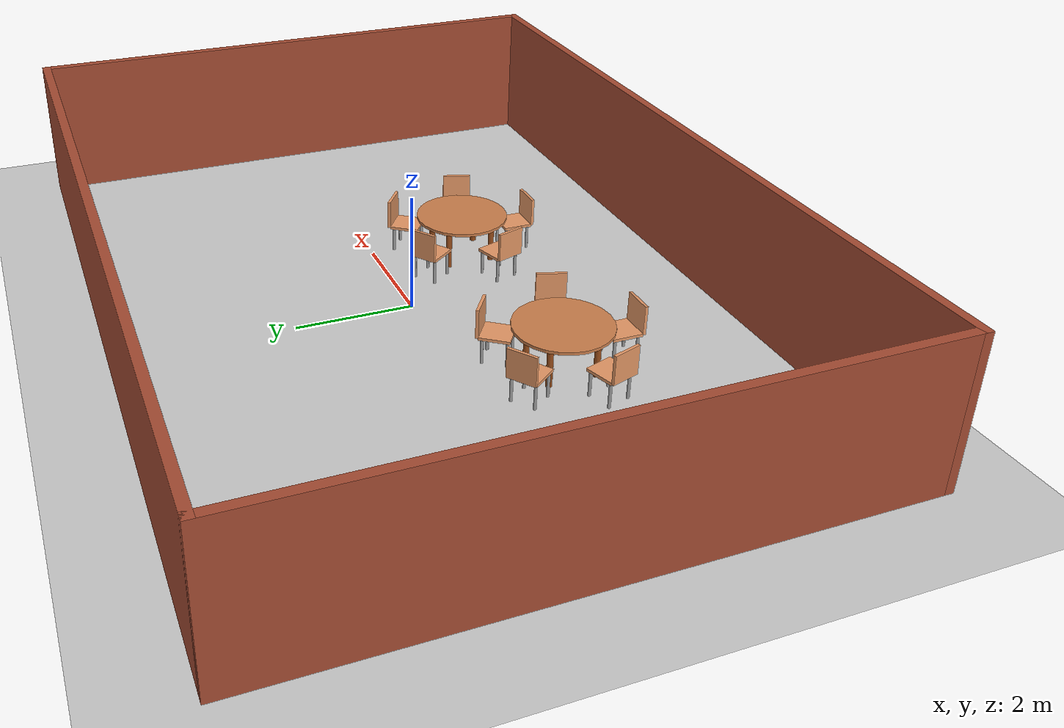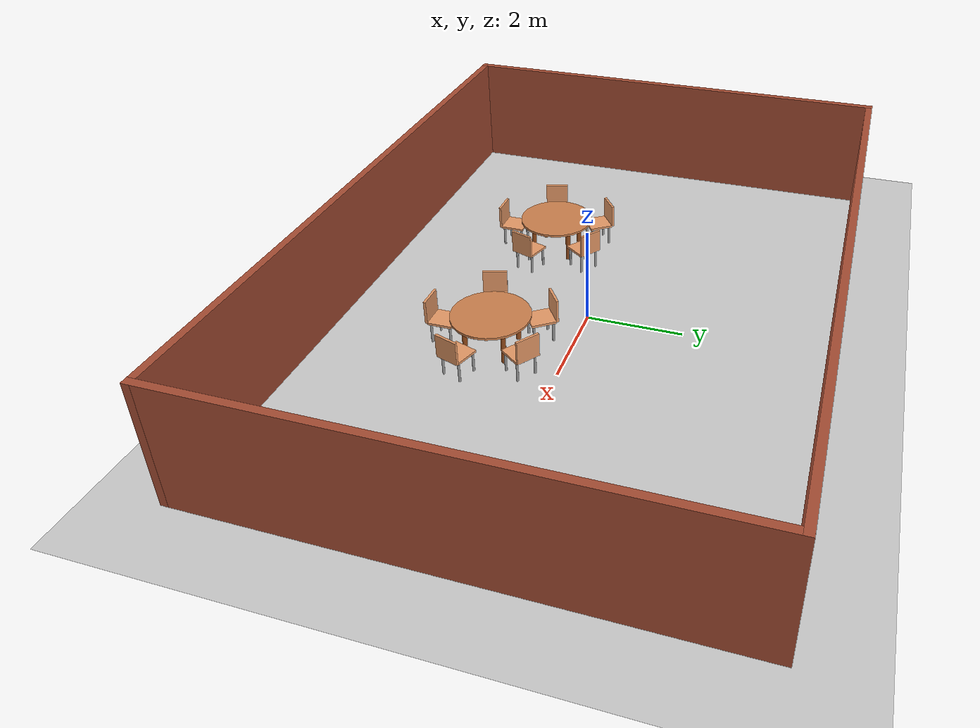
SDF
<sdf version="1.7">
 <world name="default">
  <model name="ground_plane">
   <static>1</static>
   <link name="link">
    <collision name="collision">
     <geometry><plane><normal>0 0 1</normal><size>100 100</size></plane></geometry>
     <surface>
      <contact><collide_bitmask>65535</collide_bitmask></contact>
      <friction><ode><mu>100</mu><mu2>50</mu2></ode></friction>
     </surface>
    </collision>
    <visual name="visual">
     <cast_shadows>0</cast_shadows>
     <geometry><plane><normal>0 0 1</normal><size>100 100</size></plane></geometry>
     <material>
      <script><uri>file://media/materials/scripts/gazebo.material</uri><name>Gazebo/Grey</name></script>
     </material>
    </visual>
   </link>
  </model>
  <model name="Wall">
   <link name="Wall_16">
    <collision name="Wall_16_Collision">
     <geometry><box><size>14 0.15 2.5</size></box></geometry>
     <pose>0 0 1.25 0 -0 0</pose>
    </collision>
    <visual name="Wall_16_Visual">
     <pose>0 0 1.25 0 -0 0</pose>
     <geometry><box><size>14 0.15 2.5</size></box></geometry>
     <material>
      <script><uri>file://media/materials/scripts/gazebo.material</uri><name>Gazebo/Bricks</name></script>
      <ambient>1 1 1 1</ambient>
     </material>
     <meta><layer>0</layer></meta>
    </visual>
    <pose>-0 4.925 0 0 -0 0</pose>
   </link>
   <link name="Wall_17">
    <collision name="Wall_17_Collision">
     <geometry><box><size>10 0.15 2.5</size></box></geometry>
     <pose>0 0 1.25 0 -0 0</pose>
    </collision>
    <visual name="Wall_17_Visual">
     <pose>0 0 1.25 0 -0 0</pose>
     <geometry><box><size>10 0.15 2.5</size></box></geometry>
     <material>
      <script><uri>file://media/materials/scripts/gazebo.material</uri><name>Gazebo/Bricks</name></script>
      <ambient>1 1 1 1</ambient>
     </material>
     <meta><layer>0</layer></meta>
    </visual>
    <pose>6.925 0 0 0 -0 -1.5708</pose>
   </link>
   <link name="Wall_18">
    <collision name="Wall_18_Collision">
     <geometry><box><size>14 0.15 2.5</size></box></geometry>
     <pose>0 0 1.25 0 -0 0</pose>
    </collision>
    <visual name="Wall_18_Visual">
     <pose>0 0 1.25 0 -0 0</pose>
     <geometry><box><size>14 0.15 2.5</size></box></geometry>
     <material>
      <script><uri>file://media/materials/scripts/gazebo.material</uri><name>Gazebo/Bricks</name></script>
      <ambient>1 1 1 1</ambient>
     </material>
     <meta><layer>0</layer></meta>
    </visual>
    <pose>-0 -4.925 0 0 -0 3.14159</pose>
   </link>
   <link name="Wall_19">
    <collision name="Wall_19_Collision">
     <geometry><box><size>10 0.15 2.5</size></box></geometry>
     <pose>0 0 1.25 0 -0 0</pose>
    </collision>
    <visual name="Wall_19_Visual">
     <pose>0 0 1.25 0 -0 0</pose>
     <geometry><box><size>10 0.15 2.5</size></box></geometry>
     <material>
      <script><uri>file://media/materials/scripts/gazebo.material</uri><name>Gazebo/Bricks</name></script>
      <ambient>1 1 1 1</ambient>
     </material>
     <meta><layer>0</layer></meta>
    </visual>
    <pose>-6.925 0 0 0 -0 1.5708</pose>
   </link>
   <static>1</static>
  </model>
  <model name="table_5chairs">
   <model name="chair_1">
    <static>1</static>
    <link name="chair_base">
     <visual name="seat_visual">
      <geometry><box><size>0.5 0.5 0.05</size></box></geometry>
      <pose>0 0 0.45 0 -0 0</pose>
      <material><ambient>0.8 0.5 0.3 1</ambient><diffuse>0.9 0.6 0.4 1</diffuse></material>
     </visual>
     <collision name="seat_collision">
      <geometry><box><size>0.5 0.5 0.05</size></box></geometry>
      <pose>0 0 0.45 0 -0 0</pose>
     </collision>
     <visual name="backrest_visual">
      <geometry><box><size>0.5 0.05 0.5</size></box></geometry>
      <pose>0 -0.275 0.7 0 -0 0</pose>
      <material><ambient>0.8 0.5 0.3 1</ambient><diffuse>0.9 0.6 0.4 1</diffuse></material>
     </visual>
     <collision name="backrest_collision">
      <geometry><box><size>0.5 0.05 0.5</size></box></geometry>
      <pose>0 -0.275 0.7 0 -0 0</pose>
     </collision>
     <visual name="leg1_visual">
      <geometry><cylinder><radius>0.025</radius><length>0.45</length></cylinder></geometry>
      <pose>0.2 0.2 0.225 0 -0 0</pose>
      <material><ambient>0.5 0.5 0.5 1</ambient><diffuse>0.6 0.6 0.6 1</diffuse></material>
     </visual>
     <collision name="leg1_collision">
      <geometry><cylinder><radius>0.025</radius><length>0.45</length></cylinder></geometry>
      <pose>0.2 0.2 0.225 0 -0 0</pose>
     </collision>
     <visual name="leg2_visual">
      <geometry><cylinder><radius>0.025</radius><length>0.45</length></cylinder></geometry>
      <pose>0.2 -0.2 0.225 0 -0 0</pose>
      <material><ambient>0.5 0.5 0.5 1</ambient><diffuse>0.6 0.6 0.6 1</diffuse></material>
     </visual>
     <collision name="leg2_collision">
      <geometry><cylinder><radius>0.025</radius><length>0.45</length></cylinder></geometry>
      <pose>0.2 -0.2 0.225 0 -0 0</pose>
     </collision>
     <visual name="leg3_visual">
      <geometry><cylinder><radius>0.025</radius><length>0.45</length></cylinder></geometry>
      <pose>-0.2 0.2 0.225 0 -0 0</pose>
      <material><ambient>0.5 0.5 0.5 1</ambient><diffuse>0.6 0.6 0.6 1</diffuse></material>
     </visual>
     <collision name="leg3_collision">
      <geometry><cylinder><radius>0.025</radius><length>0.45</length></cylinder></geometry>
      <pose>-0.2 0.2 0.225 0 -0 0</pose>
     </collision>
     <visual name="leg4_visual">
      <geometry><cylinder><radius>0.025</radius><length>0.45</length></cylinder></geometry>
      <pose>-0.2 -0.2 0.225 0 -0 0</pose>
      <material><ambient>0.5 0.5 0.5 1</ambient><diffuse>0.6 0.6 0.6 1</diffuse></material>
     </visual>
     <collision name="leg4_collision">
      <geometry><cylinder><radius>0.025</radius><length>0.45</length></cylinder></geometry>
      <pose>-0.2 -0.2 0.225 0 -0 0</pose>
     </collision>
    </link>
    <pose>0 -1 0 0 -0 0</pose>
   </model>
   <model name="chair_2">
    <static>1</static>
    <link name="chair_base">
     <visual name="seat_visual">
      <geometry><box><size>0.5 0.5 0.05</size></box></geometry>
      <pose>0 0 0.45 0 -0 0</pose>
      <material><ambient>0.8 0.5 0.3 1</ambient><diffuse>0.9 0.6 0.4 1</diffuse></material>
     </visual>
     <collision name="seat_collision">
      <geometry><box><size>0.5 0.5 0.05</size></box></geometry>
      <pose>0 0 0.45 0 -0 0</pose>
     </collision>
     <visual name="backrest_visual">
      <geometry><box><size>0.5 0.05 0.5</size></box></geometry>
      <pose>0 -0.275 0.7 0 -0 0</pose>
      <material><ambient>0.8 0.5 0.3 1</ambient><diffuse>0.9 0.6 0.4 1</diffuse></material>
     </visual>
     <collision name="backrest_collision">
      <geometry><box><size>0.5 0.05 0.5</size></box></geometry>
      <pose>0 -0.275 0.7 0 -0 0</pose>
     </collision>
     <visual name="leg1_visual">
      <geometry><cylinder><radius>0.025</radius><length>0.45</length></cylinder></geometry>
      <pose>0.2 0.2 0.225 0 -0 0</pose>
      <material><ambient>0.5 0.5 0.5 1</ambient><diffuse>0.6 0.6 0.6 1</diffuse></material>
     </visual>
     <collision name="leg1_collision">
      <geometry><cylinder><radius>0.025</radius><length>0.45</length></cylinder></geometry>
      <pose>0.2 0.2 0.225 0 -0 0</pose>
     </collision>
     <visual name="leg2_visual">
      <geometry><cylinder><radius>0.025</radius><length>0.45</length></cylinder></geometry>
      <pose>0.2 -0.2 0.225 0 -0 0</pose>
      <material><ambient>0.5 0.5 0.5 1</ambient><diffuse>0.6 0.6 0.6 1</diffuse></material>
     </visual>
     <collision name="leg2_collision">
      <geometry><cylinder><radius>0.025</radius><length>0.45</length></cylinder></geometry>
      <pose>0.2 -0.2 0.225 0 -0 0</pose>
     </collision>
     <visual name="leg3_visual">
      <geometry><cylinder><radius>0.025</radius><length>0.45</length></cylinder></geometry>
      <pose>-0.2 0.2 0.225 0 -0 0</pose>
      <material><ambient>0.5 0.5 0.5 1</ambient><diffuse>0.6 0.6 0.6 1</diffuse></material>
     </visual>
     <collision name="leg3_collision">
      <geometry><cylinder><radius>0.025</radius><length>0.45</length></cylinder></geometry>
      <pose>-0.2 0.2 0.225 0 -0 0</pose>
     </collision>
     <visual name="leg4_visual">
      <geometry><cylinder><radius>0.025</radius><length>0.45</length></cylinder></geometry>
      <pose>-0.2 -0.2 0.225 0 -0 0</pose>
      <material><ambient>0.5 0.5 0.5 1</ambient><diffuse>0.6 0.6 0.6 1</diffuse></material>
     </visual>
     <collision name="leg4_collision">
      <geometry><cylinder><radius>0.025</radius><length>0.45</length></cylinder></geometry>
      <pose>-0.2 -0.2 0.225 0 -0 0</pose>
     </collision>
    </link>
    <pose>0.951057 -0.309017 0 0 -0 1.25664</pose>
   </model>
   <model name="chair_3">
    <static>1</static>
    <link name="chair_base">
     <visual name="seat_visual">
      <geometry><box><size>0.5 0.5 0.05</size></box></geometry>
      <pose>0 0 0.45 0 -0 0</pose>
      <material><ambient>0.8 0.5 0.3 1</ambient><diffuse>0.9 0.6 0.4 1</diffuse></material>
     </visual>
     <collision name="seat_collision">
      <geometry><box><size>0.5 0.5 0.05</size></box></geometry>
      <pose>0 0 0.45 0 -0 0</pose>
     </collision>
     <visual name="backrest_visual">
      <geometry><box><size>0.5 0.05 0.5</size></box></geometry>
      <pose>0 -0.275 0.7 0 -0 0</pose>
      <material><ambient>0.8 0.5 0.3 1</ambient><diffuse>0.9 0.6 0.4 1</diffuse></material>
     </visual>
     <collision name="backrest_collision">
      <geometry><box><size>0.5 0.05 0.5</size></box></geometry>
      <pose>0 -0.275 0.7 0 -0 0</pose>
     </collision>
     <visual name="leg1_visual">
      <geometry><cylinder><radius>0.025</radius><length>0.45</length></cylinder></geometry>
      <pose>0.2 0.2 0.225 0 -0 0</pose>
      <material><ambient>0.5 0.5 0.5 1</ambient><diffuse>0.6 0.6 0.6 1</diffuse></material>
     </visual>
     <collision name="leg1_collision">
      <geometry><cylinder><radius>0.025</radius><length>0.45</length></cylinder></geometry>
      <pose>0.2 0.2 0.225 0 -0 0</pose>
     </collision>
     <visual name="leg2_visual">
      <geometry><cylinder><radius>0.025</radius><length>0.45</length></cylinder></geometry>
      <pose>0.2 -0.2 0.225 0 -0 0</pose>
      <material><ambient>0.5 0.5 0.5 1</ambient><diffuse>0.6 0.6 0.6 1</diffuse></material>
     </visual>
     <collision name="leg2_collision">
      <geometry><cylinder><radius>0.025</radius><length>0.45</length></cylinder></geometry>
      <pose>0.2 -0.2 0.225 0 -0 0</pose>
     </collision>
     <visual name="leg3_visual">
      <geometry><cylinder><radius>0.025</radius><length>0.45</length></cylinder></geometry>
      <pose>-0.2 0.2 0.225 0 -0 0</pose>
      <material><ambient>0.5 0.5 0.5 1</ambient><diffuse>0.6 0.6 0.6 1</diffuse></material>
     </visual>
     <collision name="leg3_collision">
      <geometry><cylinder><radius>0.025</radius><length>0.45</length></cylinder></geometry>
      <pose>-0.2 0.2 0.225 0 -0 0</pose>
     </collision>
     <visual name="leg4_visual">
      <geometry><cylinder><radius>0.025</radius><length>0.45</length></cylinder></geometry>
      <pose>-0.2 -0.2 0.225 0 -0 0</pose>
      <material><ambient>0.5 0.5 0.5 1</ambient><diffuse>0.6 0.6 0.6 1</diffuse></material>
     </visual>
     <collision name="leg4_collision">
      <geometry><cylinder><radius>0.025</radius><length>0.45</length></cylinder></geometry>
      <pose>-0.2 -0.2 0.225 0 -0 0</pose>
     </collision>
    </link>
    <pose>0.587785 0.809017 0 0 -0 2.51327</pose>
   </model>
   <model name="chair_4">
    <static>1</static>
    <link name="chair_base">
     <visual name="seat_visual">
      <geometry><box><size>0.5 0.5 0.05</size></box></geometry>
      <pose>0 0 0.45 0 -0 0</pose>
      <material><ambient>0.8 0.5 0.3 1</ambient><diffuse>0.9 0.6 0.4 1</diffuse></material>
     </visual>
     <collision name="seat_collision">
      <geometry><box><size>0.5 0.5 0.05</size></box></geometry>
      <pose>0 0 0.45 0 -0 0</pose>
     </collision>
     <visual name="backrest_visual">
      <geometry><box><size>0.5 0.05 0.5</size></box></geometry>
      <pose>0 -0.275 0.7 0 -0 0</pose>
      <material><ambient>0.8 0.5 0.3 1</ambient><diffuse>0.9 0.6 0.4 1</diffuse></material>
     </visual>
     <collision name="backrest_collision">
      <geometry><box><size>0.5 0.05 0.5</size></box></geometry>
      <pose>0 -0.275 0.7 0 -0 0</pose>
     </collision>
     <visual name="leg1_visual">
      <geometry><cylinder><radius>0.025</radius><length>0.45</length></cylinder></geometry>
      <pose>0.2 0.2 0.225 0 -0 0</pose>
      <material><ambient>0.5 0.5 0.5 1</ambient><diffuse>0.6 0.6 0.6 1</diffuse></material>
     </visual>
     <collision name="leg1_collision">
      <geometry><cylinder><radius>0.025</radius><length>0.45</length></cylinder></geometry>
      <pose>0.2 0.2 0.225 0 -0 0</pose>
     </collision>
     <visual name="leg2_visual">
      <geometry><cylinder><radius>0.025</radius><length>0.45</length></cylinder></geometry>
      <pose>0.2 -0.2 0.225 0 -0 0</pose>
      <material><ambient>0.5 0.5 0.5 1</ambient><diffuse>0.6 0.6 0.6 1</diffuse></material>
     </visual>
     <collision name="leg2_collision">
      <geometry><cylinder><radius>0.025</radius><length>0.45</length></cylinder></geometry>
      <pose>0.2 -0.2 0.225 0 -0 0</pose>
     </collision>
     <visual name="leg3_visual">
      <geometry><cylinder><radius>0.025</radius><length>0.45</length></cylinder></geometry>
      <pose>-0.2 0.2 0.225 0 -0 0</pose>
      <material><ambient>0.5 0.5 0.5 1</ambient><diffuse>0.6 0.6 0.6 1</diffuse></material>
     </visual>
     <collision name="leg3_collision">
      <geometry><cylinder><radius>0.025</radius><length>0.45</length></cylinder></geometry>
      <pose>-0.2 0.2 0.225 0 -0 0</pose>
     </collision>
     <visual name="leg4_visual">
      <geometry><cylinder><radius>0.025</radius><length>0.45</length></cylinder></geometry>
      <pose>-0.2 -0.2 0.225 0 -0 0</pose>
      <material><ambient>0.5 0.5 0.5 1</ambient><diffuse>0.6 0.6 0.6 1</diffuse></material>
     </visual>
     <collision name="leg4_collision">
      <geometry><cylinder><radius>0.025</radius><length>0.45</length></cylinder></geometry>
      <pose>-0.2 -0.2 0.225 0 -0 0</pose>
     </collision>
    </link>
    <pose>-0.587785 0.809017 0 0 0 -2.51327</pose>
   </model>
   <model name="chair_5">
    <static>1</static>
    <link name="chair_base">
     <visual name="seat_visual">
      <geometry><box><size>0.5 0.5 0.05</size></box></geometry>
      <pose>0 0 0.45 0 -0 0</pose>
      <material><ambient>0.8 0.5 0.3 1</ambient><diffuse>0.9 0.6 0.4 1</diffuse></material>
     </visual>
     <collision name="seat_collision">
      <geometry><box><size>0.5 0.5 0.05</size></box></geometry>
      <pose>0 0 0.45 0 -0 0</pose>
     </collision>
     <visual name="backrest_visual">
      <geometry><box><size>0.5 0.05 0.5</size></box></geometry>
      <pose>0 -0.275 0.7 0 -0 0</pose>
      <material><ambient>0.8 0.5 0.3 1</ambient><diffuse>0.9 0.6 0.4 1</diffuse></material>
     </visual>
     <collision name="backrest_collision">
      <geometry><box><size>0.5 0.05 0.5</size></box></geometry>
      <pose>0 -0.275 0.7 0 -0 0</pose>
     </collision>
     <visual name="leg1_visual">
      <geometry><cylinder><radius>0.025</radius><length>0.45</length></cylinder></geometry>
      <pose>0.2 0.2 0.225 0 -0 0</pose>
      <material><ambient>0.5 0.5 0.5 1</ambient><diffuse>0.6 0.6 0.6 1</diffuse></material>
     </visual>
     <collision name="leg1_collision">
      <geometry><cylinder><radius>0.025</radius><length>0.45</length></cylinder></geometry>
      <pose>0.2 0.2 0.225 0 -0 0</pose>
     </collision>
     <visual name="leg2_visual">
      <geometry><cylinder><radius>0.025</radius><length>0.45</length></cylinder></geometry>
      <pose>0.2 -0.2 0.225 0 -0 0</pose>
      <material><ambient>0.5 0.5 0.5 1</ambient><diffuse>0.6 0.6 0.6 1</diffuse></material>
     </visual>
     <collision name="leg2_collision">
      <geometry><cylinder><radius>0.025</radius><length>0.45</length></cylinder></geometry>
      <pose>0.2 -0.2 0.225 0 -0 0</pose>
     </collision>
     <visual name="leg3_visual">
      <geometry><cylinder><radius>0.025</radius><length>0.45</length></cylinder></geometry>
      <pose>-0.2 0.2 0.225 0 -0 0</pose>
      <material><ambient>0.5 0.5 0.5 1</ambient><diffuse>0.6 0.6 0.6 1</diffuse></material>
     </visual>
     <collision name="leg3_collision">
      <geometry><cylinder><radius>0.025</radius><length>0.45</length></cylinder></geometry>
      <pose>-0.2 0.2 0.225 0 -0 0</pose>
     </collision>
     <visual name="leg4_visual">
      <geometry><cylinder><radius>0.025</radius><length>0.45</length></cylinder></geometry>
      <pose>-0.2 -0.2 0.225 0 -0 0</pose>
      <material><ambient>0.5 0.5 0.5 1</ambient><diffuse>0.6 0.6 0.6 1</diffuse></material>
     </visual>
     <collision name="leg4_collision">
      <geometry><cylinder><radius>0.025</radius><length>0.45</length></cylinder></geometry>
      <pose>-0.2 -0.2 0.225 0 -0 0</pose>
     </collision>
    </link>
    <pose>-0.951057 -0.309017 0 0 -0 -1.25664</pose>
   </model>
   <model name="round_table">
    <static>1</static>
    <link name="table_top">
     <pose>0 0 0.75 0 -0 0</pose>
     <visual name="visual_top">
      <geometry><cylinder><radius>0.8</radius><length>0.05</length></cylinder></geometry>
      <material><ambient>0.8 0.5 0.3 1</ambient></material>
     </visual>
     <collision name="collision_top">
      <geometry><cylinder><radius>0.8</radius><length>0.05</length></cylinder></geometry>
     </collision>
    </link>
    <link name="table_leg_1">
     <pose>0.4 0.4 0.375 0 -0 0</pose>
     <visual name="visual_leg_1">
      <geometry><cylinder><radius>0.05</radius><length>0.75</length></cylinder></geometry>
      <material><ambient>0.6 0.3 0.1 1</ambient></material>
     </visual>
     <collision name="collision_leg_1">
      <geometry><cylinder><radius>0.05</radius><length>0.75</length></cylinder></geometry>
     </collision>
    </link>
    <link name="table_leg_2">
     <pose>-0.4 0.4 0.375 0 -0 0</pose>
     <visual name="visual_leg_2">
      <geometry><cylinder><radius>0.05</radius><length>0.75</length></cylinder></geometry>
      <material><ambient>0.6 0.3 0.1 1</ambient></material>
     </visual>
     <collision name="collision_leg_2">
      <geometry><cylinder><radius>0.05</radius><length>0.75</length></cylinder></geometry>
     </collision>
    </link>
    <link name="table_leg_3">
     <pose>-0.4 -0.4 0.375 0 -0 0</pose>
     <visual name="visual_leg_3">
      <geometry><cylinder><radius>0.05</radius><length>0.75</length></cylinder></geometry>
      <material><ambient>0.6 0.3 0.1 1</ambient></material>
     </visual>
     <collision name="collision_leg_3">
      <geometry><cylinder><radius>0.05</radius><length>0.75</length></cylinder></geometry>
     </collision>
    </link>
    <link name="table_leg_4">
     <pose>0.4 -0.4 0.375 0 -0 0</pose>
     <visual name="visual_leg_4">
      <geometry><cylinder><radius>0.05</radius><length>0.75</length></cylinder></geometry>
      <material><ambient>0.6 0.3 0.1 1</ambient></material>
     </visual>
     <collision name="collision_leg_4">
      <geometry><cylinder><radius>0.05</radius><length>0.75</length></cylinder></geometry>
     </collision>
    </link>
   </model>
   <static>0</static>
   <pose>-2.5 -1.5 0 0 -0 0</pose>
  </model>
  <model name="table_5chairs_0">
   <model name="chair_1">
    <static>1</static>
    <link name="chair_base">
     <visual name="seat_visual">
      <geometry><box><size>0.5 0.5 0.05</size></box></geometry>
      <pose>0 0 0.45 0 -0 0</pose>
      <material><ambient>0.8 0.5 0.3 1</ambient><diffuse>0.9 0.6 0.4 1</diffuse></material>
     </visual>
     <collision name="seat_collision">
      <geometry><box><size>0.5 0.5 0.05</size></box></geometry>
      <pose>0 0 0.45 0 -0 0</pose>
     </collision>
     <visual name="backrest_visual">
      <geometry><box><size>0.5 0.05 0.5</size></box></geometry>
      <pose>0 -0.275 0.7 0 -0 0</pose>
      <material><ambient>0.8 0.5 0.3 1</ambient><diffuse>0.9 0.6 0.4 1</diffuse></material>
     </visual>
     <collision name="backrest_collision">
      <geometry><box><size>0.5 0.05 0.5</size></box></geometry>
      <pose>0 -0.275 0.7 0 -0 0</pose>
     </collision>
     <visual name="leg1_visual">
      <geometry><cylinder><radius>0.025</radius><length>0.45</length></cylinder></geometry>
      <pose>0.2 0.2 0.225 0 -0 0</pose>
      <material><ambient>0.5 0.5 0.5 1</ambient><diffuse>0.6 0.6 0.6 1</diffuse></material>
     </visual>
     <collision name="leg1_collision">
      <geometry><cylinder><radius>0.025</radius><length>0.45</length></cylinder></geometry>
      <pose>0.2 0.2 0.225 0 -0 0</pose>
     </collision>
     <visual name="leg2_visual">
      <geometry><cylinder><radius>0.025</radius><length>0.45</length></cylinder></geometry>
      <pose>0.2 -0.2 0.225 0 -0 0</pose>
      <material><ambient>0.5 0.5 0.5 1</ambient><diffuse>0.6 0.6 0.6 1</diffuse></material>
     </visual>
     <collision name="leg2_collision">
      <geometry><cylinder><radius>0.025</radius><length>0.45</length></cylinder></geometry>
      <pose>0.2 -0.2 0.225 0 -0 0</pose>
     </collision>
     <visual name="leg3_visual">
      <geometry><cylinder><radius>0.025</radius><length>0.45</length></cylinder></geometry>
      <pose>-0.2 0.2 0.225 0 -0 0</pose>
      <material><ambient>0.5 0.5 0.5 1</ambient><diffuse>0.6 0.6 0.6 1</diffuse></material>
     </visual>
     <collision name="leg3_collision">
      <geometry><cylinder><radius>0.025</radius><length>0.45</length></cylinder></geometry>
      <pose>-0.2 0.2 0.225 0 -0 0</pose>
     </collision>
     <visual name="leg4_visual">
      <geometry><cylinder><radius>0.025</radius><length>0.45</length></cylinder></geometry>
      <pose>-0.2 -0.2 0.225 0 -0 0</pose>
      <material><ambient>0.5 0.5 0.5 1</ambient><diffuse>0.6 0.6 0.6 1</diffuse></material>
     </visual>
     <collision name="leg4_collision">
      <geometry><cylinder><radius>0.025</radius><length>0.45</length></cylinder></geometry>
      <pose>-0.2 -0.2 0.225 0 -0 0</pose>
     </collision>
    </link>
    <pose>0 -1 0 0 -0 0</pose>
   </model>
   <model name="chair_2">
    <static>1</static>
    <link name="chair_base">
     <visual name="seat_visual">
      <geometry><box><size>0.5 0.5 0.05</size></box></geometry>
      <pose>0 0 0.45 0 -0 0</pose>
      <material><ambient>0.8 0.5 0.3 1</ambient><diffuse>0.9 0.6 0.4 1</diffuse></material>
     </visual>
     <collision name="seat_collision">
      <geometry><box><size>0.5 0.5 0.05</size></box></geometry>
      <pose>0 0 0.45 0 -0 0</pose>
     </collision>
     <visual name="backrest_visual">
      <geometry><box><size>0.5 0.05 0.5</size></box></geometry>
      <pose>0 -0.275 0.7 0 -0 0</pose>
      <material><ambient>0.8 0.5 0.3 1</ambient><diffuse>0.9 0.6 0.4 1</diffuse></material>
     </visual>
     <collision name="backrest_collision">
      <geometry><box><size>0.5 0.05 0.5</size></box></geometry>
      <pose>0 -0.275 0.7 0 -0 0</pose>
     </collision>
     <visual name="leg1_visual">
      <geometry><cylinder><radius>0.025</radius><length>0.45</length></cylinder></geometry>
      <pose>0.2 0.2 0.225 0 -0 0</pose>
      <material><ambient>0.5 0.5 0.5 1</ambient><diffuse>0.6 0.6 0.6 1</diffuse></material>
     </visual>
     <collision name="leg1_collision">
      <geometry><cylinder><radius>0.025</radius><length>0.45</length></cylinder></geometry>
      <pose>0.2 0.2 0.225 0 -0 0</pose>
     </collision>
     <visual name="leg2_visual">
      <geometry><cylinder><radius>0.025</radius><length>0.45</length></cylinder></geometry>
      <pose>0.2 -0.2 0.225 0 -0 0</pose>
      <material><ambient>0.5 0.5 0.5 1</ambient><diffuse>0.6 0.6 0.6 1</diffuse></material>
     </visual>
     <collision name="leg2_collision">
      <geometry><cylinder><radius>0.025</radius><length>0.45</length></cylinder></geometry>
      <pose>0.2 -0.2 0.225 0 -0 0</pose>
     </collision>
     <visual name="leg3_visual">
      <geometry><cylinder><radius>0.025</radius><length>0.45</length></cylinder></geometry>
      <pose>-0.2 0.2 0.225 0 -0 0</pose>
      <material><ambient>0.5 0.5 0.5 1</ambient><diffuse>0.6 0.6 0.6 1</diffuse></material>
     </visual>
     <collision name="leg3_collision">
      <geometry><cylinder><radius>0.025</radius><length>0.45</length></cylinder></geometry>
      <pose>-0.2 0.2 0.225 0 -0 0</pose>
     </collision>
     <visual name="leg4_visual">
      <geometry><cylinder><radius>0.025</radius><length>0.45</length></cylinder></geometry>
      <pose>-0.2 -0.2 0.225 0 -0 0</pose>
      <material><ambient>0.5 0.5 0.5 1</ambient><diffuse>0.6 0.6 0.6 1</diffuse></material>
     </visual>
     <collision name="leg4_collision">
      <geometry><cylinder><radius>0.025</radius><length>0.45</length></cylinder></geometry>
      <pose>-0.2 -0.2 0.225 0 -0 0</pose>
     </collision>
    </link>
    <pose>0.951057 -0.309017 0 0 -0 1.25664</pose>
   </model>
   <model name="chair_3">
    <static>1</static>
    <link name="chair_base">
     <visual name="seat_visual">
      <geometry><box><size>0.5 0.5 0.05</size></box></geometry>
      <pose>0 0 0.45 0 -0 0</pose>
      <material><ambient>0.8 0.5 0.3 1</ambient><diffuse>0.9 0.6 0.4 1</diffuse></material>
     </visual>
     <collision name="seat_collision">
      <geometry><box><size>0.5 0.5 0.05</size></box></geometry>
      <pose>0 0 0.45 0 -0 0</pose>
     </collision>
     <visual name="backrest_visual">
      <geometry><box><size>0.5 0.05 0.5</size></box></geometry>
      <pose>0 -0.275 0.7 0 -0 0</pose>
      <material><ambient>0.8 0.5 0.3 1</ambient><diffuse>0.9 0.6 0.4 1</diffuse></material>
     </visual>
     <collision name="backrest_collision">
      <geometry><box><size>0.5 0.05 0.5</size></box></geometry>
      <pose>0 -0.275 0.7 0 -0 0</pose>
     </collision>
     <visual name="leg1_visual">
      <geometry><cylinder><radius>0.025</radius><length>0.45</length></cylinder></geometry>
      <pose>0.2 0.2 0.225 0 -0 0</pose>
      <material><ambient>0.5 0.5 0.5 1</ambient><diffuse>0.6 0.6 0.6 1</diffuse></material>
     </visual>
     <collision name="leg1_collision">
      <geometry><cylinder><radius>0.025</radius><length>0.45</length></cylinder></geometry>
      <pose>0.2 0.2 0.225 0 -0 0</pose>
     </collision>
     <visual name="leg2_visual">
      <geometry><cylinder><radius>0.025</radius><length>0.45</length></cylinder></geometry>
      <pose>0.2 -0.2 0.225 0 -0 0</pose>
      <material><ambient>0.5 0.5 0.5 1</ambient><diffuse>0.6 0.6 0.6 1</diffuse></material>
     </visual>
     <collision name="leg2_collision">
      <geometry><cylinder><radius>0.025</radius><length>0.45</length></cylinder></geometry>
      <pose>0.2 -0.2 0.225 0 -0 0</pose>
     </collision>
     <visual name="leg3_visual">
      <geometry><cylinder><radius>0.025</radius><length>0.45</length></cylinder></geometry>
      <pose>-0.2 0.2 0.225 0 -0 0</pose>
      <material><ambient>0.5 0.5 0.5 1</ambient><diffuse>0.6 0.6 0.6 1</diffuse></material>
     </visual>
     <collision name="leg3_collision">
      <geometry><cylinder><radius>0.025</radius><length>0.45</length></cylinder></geometry>
      <pose>-0.2 0.2 0.225 0 -0 0</pose>
     </collision>
     <visual name="leg4_visual">
      <geometry><cylinder><radius>0.025</radius><length>0.45</length></cylinder></geometry>
      <pose>-0.2 -0.2 0.225 0 -0 0</pose>
      <material><ambient>0.5 0.5 0.5 1</ambient><diffuse>0.6 0.6 0.6 1</diffuse></material>
     </visual>
     <collision name="leg4_collision">
      <geometry><cylinder><radius>0.025</radius><length>0.45</length></cylinder></geometry>
      <pose>-0.2 -0.2 0.225 0 -0 0</pose>
     </collision>
    </link>
    <pose>0.587785 0.809017 0 0 -0 2.51327</pose>
   </model>
   <model name="chair_4">
    <static>1</static>
    <link name="chair_base">
     <visual name="seat_visual">
      <geometry><box><size>0.5 0.5 0.05</size></box></geometry>
      <pose>0 0 0.45 0 -0 0</pose>
      <material><ambient>0.8 0.5 0.3 1</ambient><diffuse>0.9 0.6 0.4 1</diffuse></material>
     </visual>
     <collision name="seat_collision">
      <geometry><box><size>0.5 0.5 0.05</size></box></geometry>
      <pose>0 0 0.45 0 -0 0</pose>
     </collision>
     <visual name="backrest_visual">
      <geometry><box><size>0.5 0.05 0.5</size></box></geometry>
      <pose>0 -0.275 0.7 0 -0 0</pose>
      <material><ambient>0.8 0.5 0.3 1</ambient><diffuse>0.9 0.6 0.4 1</diffuse></material>
     </visual>
     <collision name="backrest_collision">
      <geometry><box><size>0.5 0.05 0.5</size></box></geometry>
      <pose>0 -0.275 0.7 0 -0 0</pose>
     </collision>
     <visual name="leg1_visual">
      <geometry><cylinder><radius>0.025</radius><length>0.45</length></cylinder></geometry>
      <pose>0.2 0.2 0.225 0 -0 0</pose>
      <material><ambient>0.5 0.5 0.5 1</ambient><diffuse>0.6 0.6 0.6 1</diffuse></material>
     </visual>
     <collision name="leg1_collision">
      <geometry><cylinder><radius>0.025</radius><length>0.45</length></cylinder></geometry>
      <pose>0.2 0.2 0.225 0 -0 0</pose>
     </collision>
     <visual name="leg2_visual">
      <geometry><cylinder><radius>0.025</radius><length>0.45</length></cylinder></geometry>
      <pose>0.2 -0.2 0.225 0 -0 0</pose>
      <material><ambient>0.5 0.5 0.5 1</ambient><diffuse>0.6 0.6 0.6 1</diffuse></material>
     </visual>
     <collision name="leg2_collision">
      <geometry><cylinder><radius>0.025</radius><length>0.45</length></cylinder></geometry>
      <pose>0.2 -0.2 0.225 0 -0 0</pose>
     </collision>
     <visual name="leg3_visual">
      <geometry><cylinder><radius>0.025</radius><length>0.45</length></cylinder></geometry>
      <pose>-0.2 0.2 0.225 0 -0 0</pose>
      <material><ambient>0.5 0.5 0.5 1</ambient><diffuse>0.6 0.6 0.6 1</diffuse></material>
     </visual>
     <collision name="leg3_collision">
      <geometry><cylinder><radius>0.025</radius><length>0.45</length></cylinder></geometry>
      <pose>-0.2 0.2 0.225 0 -0 0</pose>
     </collision>
     <visual name="leg4_visual">
      <geometry><cylinder><radius>0.025</radius><length>0.45</length></cylinder></geometry>
      <pose>-0.2 -0.2 0.225 0 -0 0</pose>
      <material><ambient>0.5 0.5 0.5 1</ambient><diffuse>0.6 0.6 0.6 1</diffuse></material>
     </visual>
     <collision name="leg4_collision">
      <geometry><cylinder><radius>0.025</radius><length>0.45</length></cylinder></geometry>
      <pose>-0.2 -0.2 0.225 0 -0 0</pose>
     </collision>
    </link>
    <pose>-0.587785 0.809017 0 0 0 -2.51327</pose>
   </model>
   <model name="chair_5">
    <static>1</static>
    <link name="chair_base">
     <visual name="seat_visual">
      <geometry><box><size>0.5 0.5 0.05</size></box></geometry>
      <pose>0 0 0.45 0 -0 0</pose>
      <material><ambient>0.8 0.5 0.3 1</ambient><diffuse>0.9 0.6 0.4 1</diffuse></material>
     </visual>
     <collision name="seat_collision">
      <geometry><box><size>0.5 0.5 0.05</size></box></geometry>
      <pose>0 0 0.45 0 -0 0</pose>
     </collision>
     <visual name="backrest_visual">
      <geometry><box><size>0.5 0.05 0.5</size></box></geometry>
      <pose>0 -0.275 0.7 0 -0 0</pose>
      <material><ambient>0.8 0.5 0.3 1</ambient><diffuse>0.9 0.6 0.4 1</diffuse></material>
     </visual>
     <collision name="backrest_collision">
      <geometry><box><size>0.5 0.05 0.5</size></box></geometry>
      <pose>0 -0.275 0.7 0 -0 0</pose>
     </collision>
     <visual name="leg1_visual">
      <geometry><cylinder><radius>0.025</radius><length>0.45</length></cylinder></geometry>
      <pose>0.2 0.2 0.225 0 -0 0</pose>
      <material><ambient>0.5 0.5 0.5 1</ambient><diffuse>0.6 0.6 0.6 1</diffuse></material>
     </visual>
     <collision name="leg1_collision">
      <geometry><cylinder><radius>0.025</radius><length>0.45</length></cylinder></geometry>
      <pose>0.2 0.2 0.225 0 -0 0</pose>
     </collision>
     <visual name="leg2_visual">
      <geometry><cylinder><radius>0.025</radius><length>0.45</length></cylinder></geometry>
      <pose>0.2 -0.2 0.225 0 -0 0</pose>
      <material><ambient>0.5 0.5 0.5 1</ambient><diffuse>0.6 0.6 0.6 1</diffuse></material>
     </visual>
     <collision name="leg2_collision">
      <geometry><cylinder><radius>0.025</radius><length>0.45</length></cylinder></geometry>
      <pose>0.2 -0.2 0.225 0 -0 0</pose>
     </collision>
     <visual name="leg3_visual">
      <geometry><cylinder><radius>0.025</radius><length>0.45</length></cylinder></geometry>
      <pose>-0.2 0.2 0.225 0 -0 0</pose>
      <material><ambient>0.5 0.5 0.5 1</ambient><diffuse>0.6 0.6 0.6 1</diffuse></material>
     </visual>
     <collision name="leg3_collision">
      <geometry><cylinder><radius>0.025</radius><length>0.45</length></cylinder></geometry>
      <pose>-0.2 0.2 0.225 0 -0 0</pose>
     </collision>
     <visual name="leg4_visual">
      <geometry><cylinder><radius>0.025</radius><length>0.45</length></cylinder></geometry>
      <pose>-0.2 -0.2 0.225 0 -0 0</pose>
      <material><ambient>0.5 0.5 0.5 1</ambient><diffuse>0.6 0.6 0.6 1</diffuse></material>
     </visual>
     <collision name="leg4_collision">
      <geometry><cylinder><radius>0.025</radius><length>0.45</length></cylinder></geometry>
      <pose>-0.2 -0.2 0.225 0 -0 0</pose>
     </collision>
    </link>
    <pose>-0.951057 -0.309017 0 0 -0 -1.25664</pose>
   </model>
   <model name="round_table">
    <static>1</static>
    <link name="table_top">
     <pose>0 0 0.75 0 -0 0</pose>
     <visual name="visual_top">
      <geometry><cylinder><radius>0.8</radius><length>0.05</length></cylinder></geometry>
      <material><ambient>0.8 0.5 0.3 1</ambient></material>
     </visual>
     <collision name="collision_top">
      <geometry><cylinder><radius>0.8</radius><length>0.05</length></cylinder></geometry>
     </collision>
    </link>
    <link name="table_leg_1">
     <pose>0.4 0.4 0.375 0 -0 0</pose>
     <visual name="visual_leg_1">
      <geometry><cylinder><radius>0.05</radius><length>0.75</length></cylinder></geometry>
      <material><ambient>0.6 0.3 0.1 1</ambient></material>
     </visual>
     <collision name="collision_leg_1">
      <geometry><cylinder><radius>0.05</radius><length>0.75</length></cylinder></geometry>
     </collision>
    </link>
    <link name="table_leg_2">
     <pose>-0.4 0.4 0.375 0 -0 0</pose>
     <visual name="visual_leg_2">
      <geometry><cylinder><radius>0.05</radius><length>0.75</length></cylinder></geometry>
      <material><ambient>0.6 0.3 0.1 1</ambient></material>
     </visual>
     <collision name="collision_leg_2">
      <geometry><cylinder><radius>0.05</radius><length>0.75</length></cylinder></geometry>
     </collision>
    </link>
    <link name="table_leg_3">
     <pose>-0.4 -0.4 0.375 0 -0 0</pose>
     <visual name="visual_leg_3">
      <geometry><cylinder><radius>0.05</radius><length>0.75</length></cylinder></geometry>
      <material><ambient>0.6 0.3 0.1 1</ambient></material>
     </visual>
     <collision name="collision_leg_3">
      <geometry><cylinder><radius>0.05</radius><length>0.75</length></cylinder></geometry>
     </collision>
    </link>
    <link name="table_leg_4">
     <pose>0.4 -0.4 0.375 0 -0 0</pose>
     <visual name="visual_leg_4">
      <geometry><cylinder><radius>0.05</radius><length>0.75</length></cylinder></geometry>
      <material><ambient>0.6 0.3 0.1 1</ambient></material>
     </visual>
     <collision name="collision_leg_4">
      <geometry><cylinder><radius>0.05</radius><length>0.75</length></cylinder></geometry>
     </collision>
    </link>
   </model>
   <static>0</static>
   <pose>1.5 -1.5 0 0 -0 0</pose>
  </model>
 </world>
</sdf>
